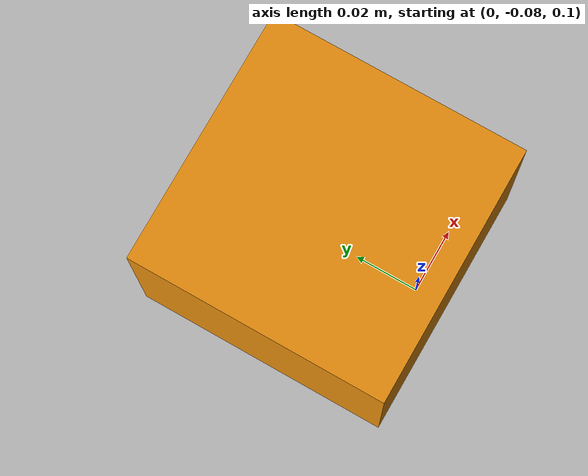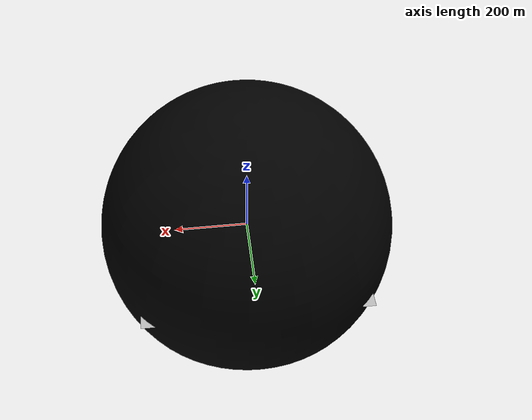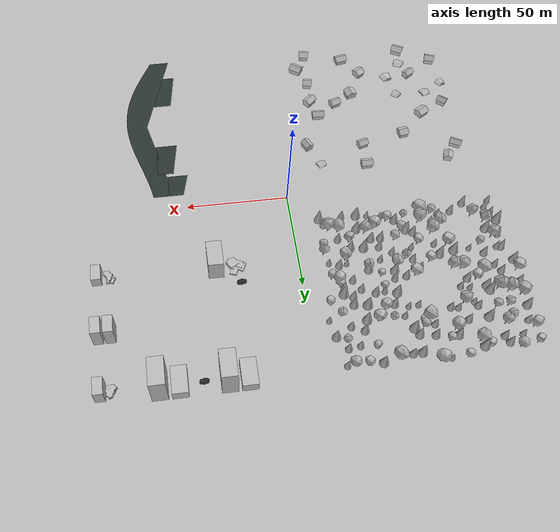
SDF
<sdf version="1.9">
 <world name="region">
  <physics name="1ms" type="ignore">
   <max_step_size>0.001</max_step_size>
   <real_time_factor>1.0</real_time_factor>
  </physics>
  <plugin filename="gz-sim-physics-system" name="gz::sim::systems::Physics"/>
  <plugin filename="gz-sim-sensors-system" name="gz::sim::systems::Sensors">
   <render_engine>ogre2</render_engine>
  </plugin>
  <plugin filename="gz-sim-user-commands-system" name="gz::sim::systems::UserCommands"/>
  <plugin filename="gz-sim-scene-broadcaster-system" name="gz::sim::systems::SceneBroadcaster"/>
  <plugin filename="gz-sim-air-pressure-system" name="gz::sim::systems::AirPressure"/>
  <plugin filename="gz-sim-air-speed-system" name="gz::sim::systems::AirSpeed"/>
  <plugin filename="gz-sim-altimeter-system" name="gz::sim::systems::Altimeter"/>
  <plugin filename="gz-sim-imu-system" name="gz::sim::systems::Imu"/>
  <plugin filename="gz-sim-magnetometer-system" name="gz::sim::systems::Magnetometer"/>
  <plugin filename="gz-sim-navsat-system" name="gz::sim::systems::NavSat"/>
  <plugin filename="gz-sim-particle-emitter-system" name="gz::sim::systems::ParticleEmitter"/>
  <scene><ambient>0.15 0.15 0.15</ambient><background>0.62 0.58 0.52</background></scene>
  <light type="directional" name="fill">
   <cast_shadows>false</cast_shadows>
   <pose>0 0 10 0 0 0</pose>
   <diffuse>0.4 0.4 0.4 1</diffuse>
   <specular>0 0 0 1</specular>
   <direction>0 0 -1</direction>
  </light>
  <atmosphere type="adiabatic">
   <temperature>288</temperature>
   <temperature_gradient>-0.0003</temperature_gradient>
  </atmosphere>
  <light type="directional" name="sun">
   <pose>0 0 10 0 0 0</pose>
   <diffuse>0.7 0.7 0.7 1</diffuse>
   <specular>0.8 0.8 0.8 1</specular>
   <attenuation>
    <range>1000</range>
    <constant>0.9</constant>
    <linear>0.01</linear>
    <quadratic>0.001</quadratic>
   </attenuation>
   <direction>-0.5 0.1 -0.9</direction>
  </light>
  <include><name>sky_day</name><uri>model://sky_dome</uri></include>
  <include><name>sky_night</name><uri>model://sky_dome_night</uri><pose>0 0 -100000 0 0 0</pose></include>
  <spherical_coordinates>
   <latitude_deg>-35.3632621</latitude_deg>
   <longitude_deg>149.1652374</longitude_deg>
   <elevation>10.0</elevation>
   <heading_deg>0</heading_deg>
   <surface_model>EARTH_WGS84</surface_model>
  </spherical_coordinates>
  <include><uri>model://region_scenery</uri></include>
  <model name="fire_city">
   <static>true</static>
   <pose>50 92 0 0 0 0.3</pose>
   <link name="link">
    <visual name="ash">
     <geometry>
      <mesh><uri>model://disaster_ground/meshes/rubble_mound_3.dae</uri><scale>2.0 1.8 0.8</scale></mesh>
     </geometry>
     <material>
      <ambient>0.1 0.1 0.1 1</ambient>
      <diffuse>0.13 0.12 0.12 1</diffuse>
      <specular>0 0 0 1</specular>
     </material>
     <plugin filename="gz-sim-thermal-system" name="gz::sim::systems::Thermal">
      <temperature>305.0</temperature>
     </plugin>
    </visual>
    <visual name="beam_1">
     <pose>0 0 0.3 0 0.08 0</pose>
     <geometry><box><size>2.6 0.3 0.3</size></box></geometry>
     <material><ambient>0.03 0.025 0.02 1</ambient><diffuse>0.05 0.04 0.035 1</diffuse></material>
     <plugin filename="gz-sim-thermal-system" name="gz::sim::systems::Thermal">
      <temperature>335.0</temperature>
     </plugin>
    </visual>
    <visual name="ember_1">
     <pose>0.3 0.1 0.35 0 0 0.4</pose>
     <geometry><box><size>0.5 0.25 0.1</size></box></geometry>
     <material>
      <ambient>1 0.3 0.05 1</ambient>
      <diffuse>1 0.3 0.05 1</diffuse>
      <emissive>1 0.35 0.05 1</emissive>
     </material>
     <plugin filename="gz-sim-thermal-system" name="gz::sim::systems::Thermal">
      <temperature>365.0</temperature>
     </plugin>
    </visual>
   </link>
  </model>
  <include><name>smoke_fire_city</name><uri>model://smoke_plume</uri><pose>50 92 3 0 0 0</pose></include>
  <model name="fire_debris">
   <static>true</static>
   <pose>28 45 0 0 0 0.3</pose>
   <link name="link">
    <visual name="ash">
     <geometry>
      <mesh><uri>model://disaster_ground/meshes/rubble_mound_3.dae</uri><scale>2.0 1.8 0.8</scale></mesh>
     </geometry>
     <material>
      <ambient>0.1 0.1 0.1 1</ambient>
      <diffuse>0.13 0.12 0.12 1</diffuse>
      <specular>0 0 0 1</specular>
     </material>
     <plugin filename="gz-sim-thermal-system" name="gz::sim::systems::Thermal">
      <temperature>305.0</temperature>
     </plugin>
    </visual>
    <visual name="beam_1">
     <pose>0 0 0.3 0 0.08 0</pose>
     <geometry><box><size>2.6 0.3 0.3</size></box></geometry>
     <material><ambient>0.03 0.025 0.02 1</ambient><diffuse>0.05 0.04 0.035 1</diffuse></material>
     <plugin filename="gz-sim-thermal-system" name="gz::sim::systems::Thermal">
      <temperature>335.0</temperature>
     </plugin>
    </visual>
    <visual name="ember_1">
     <pose>0.3 0.1 0.35 0 0 0.4</pose>
     <geometry><box><size>0.5 0.25 0.1</size></box></geometry>
     <material>
      <ambient>1 0.3 0.05 1</ambient>
      <diffuse>1 0.3 0.05 1</diffuse>
      <emissive>1 0.35 0.05 1</emissive>
     </material>
     <plugin filename="gz-sim-thermal-system" name="gz::sim::systems::Thermal">
      <temperature>365.0</temperature>
     </plugin>
    </visual>
   </link>
  </model>
  <model name="casualty_c1_heat">
   <static>true</static>
   <pose>-18.76 -56.71 0.27 0 0 3.672</pose>
   <link name="body">
    <visual name="head">
     <pose>-0.55 0 0 0 0 0</pose>
     <geometry><sphere><radius>0.123</radius></sphere></geometry>
     <transparency>1.0</transparency>
     <cast_shadows>false</cast_shadows>
     <plugin filename="gz-sim-thermal-system" name="gz::sim::systems::Thermal">
      <temperature>309</temperature>
     </plugin>
    </visual>
    <visual name="torso">
     <pose>-0.15 0 0 0 0 0</pose>
     <geometry><box><size>0.515 0.381 0.2</size></box></geometry>
     <transparency>1.0</transparency>
     <cast_shadows>false</cast_shadows>
     <plugin filename="gz-sim-thermal-system" name="gz::sim::systems::Thermal">
      <temperature>305</temperature>
     </plugin>
    </visual>
    <visual name="pelvis">
     <pose>0.12 0 0 0 0 0</pose>
     <geometry><box><size>0.2 0.336 0.18</size></box></geometry>
     <transparency>1.0</transparency>
     <cast_shadows>false</cast_shadows>
     <plugin filename="gz-sim-thermal-system" name="gz::sim::systems::Thermal">
      <temperature>305</temperature>
     </plugin>
    </visual>
    <visual name="leg_l">
     <pose>0.6 0.13 0 0 1.5708 0.12</pose>
     <geometry><cylinder><radius>0.078</radius><length>0.9</length></cylinder></geometry>
     <transparency>1.0</transparency>
     <cast_shadows>false</cast_shadows>
     <plugin filename="gz-sim-thermal-system" name="gz::sim::systems::Thermal">
      <temperature>305</temperature>
     </plugin>
    </visual>
    <visual name="leg_r">
     <pose>0.6 -0.13 0 0 1.5708 -0.12</pose>
     <geometry><cylinder><radius>0.078</radius><length>0.9</length></cylinder></geometry>
     <transparency>1.0</transparency>
     <cast_shadows>false</cast_shadows>
     <plugin filename="gz-sim-thermal-system" name="gz::sim::systems::Thermal">
      <temperature>305</temperature>
     </plugin>
    </visual>
    <visual name="arm_l">
     <pose>-0.02 0.24 0 0 1.5708 0</pose>
     <geometry><cylinder><radius>0.050</radius><length>0.66</length></cylinder></geometry>
     <transparency>1.0</transparency>
     <cast_shadows>false</cast_shadows>
     <plugin filename="gz-sim-thermal-system" name="gz::sim::systems::Thermal">
      <temperature>305</temperature>
     </plugin>
    </visual>
    <visual name="arm_r">
     <pose>-0.02 -0.24 0 0 1.5708 0</pose>
     <geometry><cylinder><radius>0.050</radius><length>0.66</length></cylinder></geometry>
     <transparency>1.0</transparency>
     <cast_shadows>false</cast_shadows>
     <plugin filename="gz-sim-thermal-system" name="gz::sim::systems::Thermal">
      <temperature>305</temperature>
     </plugin>
    </visual>
    <visual name="hand_l">
     <pose>0.34 0.25 0 0 0 0</pose>
     <geometry><sphere><radius>0.055</radius></sphere></geometry>
     <transparency>1.0</transparency>
     <cast_shadows>false</cast_shadows>
     <plugin filename="gz-sim-thermal-system" name="gz::sim::systems::Thermal">
      <temperature>309</temperature>
     </plugin>
    </visual>
    <visual name="hand_r">
     <pose>0.34 -0.25 0 0 0 0</pose>
     <geometry><sphere><radius>0.055</radius></sphere></geometry>
     <transparency>1.0</transparency>
     <cast_shadows>false</cast_shadows>
     <plugin filename="gz-sim-thermal-system" name="gz::sim::systems::Thermal">
      <temperature>309</temperature>
     </plugin>
    </visual>
   </link>
  </model>
  <model name="casualty_c2_heat">
   <static>true</static>
   <pose>60.57 79.05 0.0 0 0 2.240</pose>
   <link name="body">
    <visual name="head">
     <pose>0 0 1.62 0 0 0</pose>
     <geometry><sphere><radius>0.11</radius></sphere></geometry>
     <transparency>1.0</transparency>
     <cast_shadows>false</cast_shadows>
     <plugin filename="gz-sim-thermal-system" name="gz::sim::systems::Thermal">
      <temperature>309</temperature>
     </plugin>
    </visual>
    <visual name="torso">
     <pose>0 0 1.2 0 0 0</pose>
     <geometry><box><size>0.24 0.4 0.6</size></box></geometry>
     <transparency>1.0</transparency>
     <cast_shadows>false</cast_shadows>
     <plugin filename="gz-sim-thermal-system" name="gz::sim::systems::Thermal">
      <temperature>305</temperature>
     </plugin>
    </visual>
    <visual name="hips">
     <pose>0 0 0.85 0 0 0</pose>
     <geometry><box><size>0.22 0.34 0.2</size></box></geometry>
     <transparency>1.0</transparency>
     <cast_shadows>false</cast_shadows>
     <plugin filename="gz-sim-thermal-system" name="gz::sim::systems::Thermal">
      <temperature>305</temperature>
     </plugin>
    </visual>
    <visual name="leg_l">
     <pose>0 0.1 0.42 0 0 0</pose>
     <geometry><cylinder><radius>0.07</radius><length>0.84</length></cylinder></geometry>
     <transparency>1.0</transparency>
     <cast_shadows>false</cast_shadows>
     <plugin filename="gz-sim-thermal-system" name="gz::sim::systems::Thermal">
      <temperature>305</temperature>
     </plugin>
    </visual>
    <visual name="leg_r">
     <pose>0 -0.1 0.42 0 0 0</pose>
     <geometry><cylinder><radius>0.07</radius><length>0.84</length></cylinder></geometry>
     <transparency>1.0</transparency>
     <cast_shadows>false</cast_shadows>
     <plugin filename="gz-sim-thermal-system" name="gz::sim::systems::Thermal">
      <temperature>305</temperature>
     </plugin>
    </visual>
    <visual name="arm_l">
     <pose>0 0.26 1.15 0 0 0</pose>
     <geometry><cylinder><radius>0.045</radius><length>0.6</length></cylinder></geometry>
     <transparency>1.0</transparency>
     <cast_shadows>false</cast_shadows>
     <plugin filename="gz-sim-thermal-system" name="gz::sim::systems::Thermal">
      <temperature>305</temperature>
     </plugin>
    </visual>
    <visual name="arm_r">
     <pose>0 -0.26 1.15 0 0 0</pose>
     <geometry><cylinder><radius>0.045</radius><length>0.6</length></cylinder></geometry>
     <transparency>1.0</transparency>
     <cast_shadows>false</cast_shadows>
     <plugin filename="gz-sim-thermal-system" name="gz::sim::systems::Thermal">
      <temperature>305</temperature>
     </plugin>
    </visual>
   </link>
  </model>
  <model name="casualty_c3_heat">
   <static>true</static>
   <pose>-87.86 -90.43 0.0 0 0 2.270</pose>
   <link name="body">
    <visual name="head">
     <pose>-0.05 0 0.88 0 0 0</pose>
     <geometry><sphere><radius>0.11</radius></sphere></geometry>
     <transparency>1.0</transparency>
     <cast_shadows>false</cast_shadows>
     <plugin filename="gz-sim-thermal-system" name="gz::sim::systems::Thermal">
      <temperature>309</temperature>
     </plugin>
    </visual>
    <visual name="torso">
     <pose>-0.05 0 0.55 0 0 0</pose>
     <geometry><box><size>0.24 0.4 0.55</size></box></geometry>
     <transparency>1.0</transparency>
     <cast_shadows>false</cast_shadows>
     <plugin filename="gz-sim-thermal-system" name="gz::sim::systems::Thermal">
      <temperature>305</temperature>
     </plugin>
    </visual>
    <visual name="thigh_l">
     <pose>0.22 0.1 0.12 0 1.5708 0</pose>
     <geometry><cylinder><radius>0.08</radius><length>0.45</length></cylinder></geometry>
     <transparency>1.0</transparency>
     <cast_shadows>false</cast_shadows>
     <plugin filename="gz-sim-thermal-system" name="gz::sim::systems::Thermal">
      <temperature>305</temperature>
     </plugin>
    </visual>
    <visual name="thigh_r">
     <pose>0.22 -0.1 0.12 0 1.5708 0</pose>
     <geometry><cylinder><radius>0.08</radius><length>0.45</length></cylinder></geometry>
     <transparency>1.0</transparency>
     <cast_shadows>false</cast_shadows>
     <plugin filename="gz-sim-thermal-system" name="gz::sim::systems::Thermal">
      <temperature>305</temperature>
     </plugin>
    </visual>
    <visual name="shin_l">
     <pose>0.45 0.1 0.12 0 1.5708 0</pose>
     <geometry><cylinder><radius>0.06</radius><length>0.4</length></cylinder></geometry>
     <transparency>1.0</transparency>
     <cast_shadows>false</cast_shadows>
     <plugin filename="gz-sim-thermal-system" name="gz::sim::systems::Thermal">
      <temperature>305</temperature>
     </plugin>
    </visual>
    <visual name="shin_r">
     <pose>0.45 -0.1 0.12 0 1.5708 0</pose>
     <geometry><cylinder><radius>0.06</radius><length>0.4</length></cylinder></geometry>
     <transparency>1.0</transparency>
     <cast_shadows>false</cast_shadows>
     <plugin filename="gz-sim-thermal-system" name="gz::sim::systems::Thermal">
      <temperature>305</temperature>
     </plugin>
    </visual>
    <visual name="arm_l">
     <pose>0.05 0.26 0.5 0 0.4 0</pose>
     <geometry><cylinder><radius>0.045</radius><length>0.5</length></cylinder></geometry>
     <transparency>1.0</transparency>
     <cast_shadows>false</cast_shadows>
     <plugin filename="gz-sim-thermal-system" name="gz::sim::systems::Thermal">
      <temperature>305</temperature>
     </plugin>
    </visual>
    <visual name="arm_r">
     <pose>0.05 -0.26 0.5 0 0.4 0</pose>
     <geometry><cylinder><radius>0.045</radius><length>0.5</length></cylinder></geometry>
     <transparency>1.0</transparency>
     <cast_shadows>false</cast_shadows>
     <plugin filename="gz-sim-thermal-system" name="gz::sim::systems::Thermal">
      <temperature>305</temperature>
     </plugin>
    </visual>
   </link>
  </model>
  <model name="casualty_c4_heat">
   <static>true</static>
   <pose>-90.37 -64.78 0.0 0 0 1.340</pose>
   <link name="body">
    <visual name="head">
     <pose>-0.05 0 0.88 0 0 0</pose>
     <geometry><sphere><radius>0.11</radius></sphere></geometry>
     <transparency>1.0</transparency>
     <cast_shadows>false</cast_shadows>
     <plugin filename="gz-sim-thermal-system" name="gz::sim::systems::Thermal">
      <temperature>309</temperature>
     </plugin>
    </visual>
    <visual name="torso">
     <pose>-0.05 0 0.55 0 0 0</pose>
     <geometry><box><size>0.24 0.4 0.55</size></box></geometry>
     <transparency>1.0</transparency>
     <cast_shadows>false</cast_shadows>
     <plugin filename="gz-sim-thermal-system" name="gz::sim::systems::Thermal">
      <temperature>305</temperature>
     </plugin>
    </visual>
    <visual name="thigh_l">
     <pose>0.22 0.1 0.12 0 1.5708 0</pose>
     <geometry><cylinder><radius>0.08</radius><length>0.45</length></cylinder></geometry>
     <transparency>1.0</transparency>
     <cast_shadows>false</cast_shadows>
     <plugin filename="gz-sim-thermal-system" name="gz::sim::systems::Thermal">
      <temperature>305</temperature>
     </plugin>
    </visual>
    <visual name="thigh_r">
     <pose>0.22 -0.1 0.12 0 1.5708 0</pose>
     <geometry><cylinder><radius>0.08</radius><length>0.45</length></cylinder></geometry>
     <transparency>1.0</transparency>
     <cast_shadows>false</cast_shadows>
     <plugin filename="gz-sim-thermal-system" name="gz::sim::systems::Thermal">
      <temperature>305</temperature>
     </plugin>
    </visual>
    <visual name="shin_l">
     <pose>0.45 0.1 0.12 0 1.5708 0</pose>
     <geometry><cylinder><radius>0.06</radius><length>0.4</length></cylinder></geometry>
     <transparency>1.0</transparency>
     <cast_shadows>false</cast_shadows>
     <plugin filename="gz-sim-thermal-system" name="gz::sim::systems::Thermal">
      <temperature>305</temperature>
     </plugin>
    </visual>
    <visual name="shin_r">
     <pose>0.45 -0.1 0.12 0 1.5708 0</pose>
     <geometry><cylinder><radius>0.06</radius><length>0.4</length></cylinder></geometry>
     <transparency>1.0</transparency>
     <cast_shadows>false</cast_shadows>
     <plugin filename="gz-sim-thermal-system" name="gz::sim::systems::Thermal">
      <temperature>305</temperature>
     </plugin>
    </visual>
    <visual name="arm_l">
     <pose>0.05 0.26 0.5 0 0.4 0</pose>
     <geometry><cylinder><radius>0.045</radius><length>0.5</length></cylinder></geometry>
     <transparency>1.0</transparency>
     <cast_shadows>false</cast_shadows>
     <plugin filename="gz-sim-thermal-system" name="gz::sim::systems::Thermal">
      <temperature>305</temperature>
     </plugin>
    </visual>
    <visual name="arm_r">
     <pose>0.05 -0.26 0.5 0 0.4 0</pose>
     <geometry><cylinder><radius>0.045</radius><length>0.5</length></cylinder></geometry>
     <transparency>1.0</transparency>
     <cast_shadows>false</cast_shadows>
     <plugin filename="gz-sim-thermal-system" name="gz::sim::systems::Thermal">
      <temperature>305</temperature>
     </plugin>
    </visual>
   </link>
  </model>
  <model name="casualty_c5_heat">
   <static>true</static>
   <pose>83.91 91.10 0.27 0 0 3.032</pose>
   <link name="body">
    <visual name="head">
     <pose>-0.55 0 0 0 0 0</pose>
     <geometry><sphere><radius>0.123</radius></sphere></geometry>
     <transparency>1.0</transparency>
     <cast_shadows>false</cast_shadows>
     <plugin filename="gz-sim-thermal-system" name="gz::sim::systems::Thermal">
      <temperature>309</temperature>
     </plugin>
    </visual>
    <visual name="torso">
     <pose>-0.15 0 0 0 0 0</pose>
     <geometry><box><size>0.515 0.381 0.2</size></box></geometry>
     <transparency>1.0</transparency>
     <cast_shadows>false</cast_shadows>
     <plugin filename="gz-sim-thermal-system" name="gz::sim::systems::Thermal">
      <temperature>305</temperature>
     </plugin>
    </visual>
    <visual name="pelvis">
     <pose>0.12 0 0 0 0 0</pose>
     <geometry><box><size>0.2 0.336 0.18</size></box></geometry>
     <transparency>1.0</transparency>
     <cast_shadows>false</cast_shadows>
     <plugin filename="gz-sim-thermal-system" name="gz::sim::systems::Thermal">
      <temperature>305</temperature>
     </plugin>
    </visual>
    <visual name="leg_l">
     <pose>0.6 0.13 0 0 1.5708 0.12</pose>
     <geometry><cylinder><radius>0.078</radius><length>0.9</length></cylinder></geometry>
     <transparency>1.0</transparency>
     <cast_shadows>false</cast_shadows>
     <plugin filename="gz-sim-thermal-system" name="gz::sim::systems::Thermal">
      <temperature>305</temperature>
     </plugin>
    </visual>
    <visual name="leg_r">
     <pose>0.6 -0.13 0 0 1.5708 -0.12</pose>
     <geometry><cylinder><radius>0.078</radius><length>0.9</length></cylinder></geometry>
     <transparency>1.0</transparency>
     <cast_shadows>false</cast_shadows>
     <plugin filename="gz-sim-thermal-system" name="gz::sim::systems::Thermal">
      <temperature>305</temperature>
     </plugin>
    </visual>
    <visual name="arm_l">
     <pose>-0.02 0.24 0 0 1.5708 0</pose>
     <geometry><cylinder><radius>0.050</radius><length>0.66</length></cylinder></geometry>
     <transparency>1.0</transparency>
     <cast_shadows>false</cast_shadows>
     <plugin filename="gz-sim-thermal-system" name="gz::sim::systems::Thermal">
      <temperature>305</temperature>
     </plugin>
    </visual>
    <visual name="arm_r">
     <pose>-0.02 -0.24 0 0 1.5708 0</pose>
     <geometry><cylinder><radius>0.050</radius><length>0.66</length></cylinder></geometry>
     <transparency>1.0</transparency>
     <cast_shadows>false</cast_shadows>
     <plugin filename="gz-sim-thermal-system" name="gz::sim::systems::Thermal">
      <temperature>305</temperature>
     </plugin>
    </visual>
    <visual name="hand_l">
     <pose>0.34 0.25 0 0 0 0</pose>
     <geometry><sphere><radius>0.055</radius></sphere></geometry>
     <transparency>1.0</transparency>
     <cast_shadows>false</cast_shadows>
     <plugin filename="gz-sim-thermal-system" name="gz::sim::systems::Thermal">
      <temperature>309</temperature>
     </plugin>
    </visual>
    <visual name="hand_r">
     <pose>0.34 -0.25 0 0 0 0</pose>
     <geometry><sphere><radius>0.055</radius></sphere></geometry>
     <transparency>1.0</transparency>
     <cast_shadows>false</cast_shadows>
     <plugin filename="gz-sim-thermal-system" name="gz::sim::systems::Thermal">
      <temperature>309</temperature>
     </plugin>
    </visual>
   </link>
  </model>
  <model name="casualty_c6_heat">
   <static>true</static>
   <pose>-61.42 56.82 0.27 0 0 1.890</pose>
   <link name="body">
    <visual name="head">
     <pose>-0.55 0 0 0 0 0</pose>
     <geometry><sphere><radius>0.123</radius></sphere></geometry>
     <transparency>1.0</transparency>
     <cast_shadows>false</cast_shadows>
     <plugin filename="gz-sim-thermal-system" name="gz::sim::systems::Thermal">
      <temperature>309</temperature>
     </plugin>
    </visual>
    <visual name="torso">
     <pose>-0.15 0 0 0 0 0</pose>
     <geometry><box><size>0.515 0.381 0.2</size></box></geometry>
     <transparency>1.0</transparency>
     <cast_shadows>false</cast_shadows>
     <plugin filename="gz-sim-thermal-system" name="gz::sim::systems::Thermal">
      <temperature>305</temperature>
     </plugin>
    </visual>
    <visual name="pelvis">
     <pose>0.12 0 0 0 0 0</pose>
     <geometry><box><size>0.2 0.336 0.18</size></box></geometry>
     <transparency>1.0</transparency>
     <cast_shadows>false</cast_shadows>
     <plugin filename="gz-sim-thermal-system" name="gz::sim::systems::Thermal">
      <temperature>305</temperature>
     </plugin>
    </visual>
    <visual name="leg_l">
     <pose>0.6 0.13 0 0 1.5708 0.12</pose>
     <geometry><cylinder><radius>0.078</radius><length>0.9</length></cylinder></geometry>
     <transparency>1.0</transparency>
     <cast_shadows>false</cast_shadows>
     <plugin filename="gz-sim-thermal-system" name="gz::sim::systems::Thermal">
      <temperature>305</temperature>
     </plugin>
    </visual>
    <visual name="leg_r">
     <pose>0.6 -0.13 0 0 1.5708 -0.12</pose>
     <geometry><cylinder><radius>0.078</radius><length>0.9</length></cylinder></geometry>
     <transparency>1.0</transparency>
     <cast_shadows>false</cast_shadows>
     <plugin filename="gz-sim-thermal-system" name="gz::sim::systems::Thermal">
      <temperature>305</temperature>
     </plugin>
    </visual>
    <visual name="arm_l">
     <pose>-0.02 0.24 0 0 1.5708 0</pose>
     <geometry><cylinder><radius>0.050</radius><length>0.66</length></cylinder></geometry>
     <transparency>1.0</transparency>
     <cast_shadows>false</cast_shadows>
     <plugin filename="gz-sim-thermal-system" name="gz::sim::systems::Thermal">
      <temperature>305</temperature>
     </plugin>
    </visual>
    <visual name="arm_r">
     <pose>-0.02 -0.24 0 0 1.5708 0</pose>
     <geometry><cylinder><radius>0.050</radius><length>0.66</length></cylinder></geometry>
     <transparency>1.0</transparency>
     <cast_shadows>false</cast_shadows>
     <plugin filename="gz-sim-thermal-system" name="gz::sim::systems::Thermal">
      <temperature>305</temperature>
     </plugin>
    </visual>
    <visual name="hand_l">
     <pose>0.34 0.25 0 0 0 0</pose>
     <geometry><sphere><radius>0.055</radius></sphere></geometry>
     <transparency>1.0</transparency>
     <cast_shadows>false</cast_shadows>
     <plugin filename="gz-sim-thermal-system" name="gz::sim::systems::Thermal">
      <temperature>309</temperature>
     </plugin>
    </visual>
    <visual name="hand_r">
     <pose>0.34 -0.25 0 0 0 0</pose>
     <geometry><sphere><radius>0.055</radius></sphere></geometry>
     <transparency>1.0</transparency>
     <cast_shadows>false</cast_shadows>
     <plugin filename="gz-sim-thermal-system" name="gz::sim::systems::Thermal">
      <temperature>309</temperature>
     </plugin>
    </visual>
   </link>
  </model>
  <model name="payload_box">
   <pose>0 -0.05 0.12 0 0 0</pose>
   <link name="body">
    <inertial>
     <mass>0.3</mass>
     <inertia><ixx>0.0003</ixx><ixy>0</ixy><ixz>0</ixz><iyy>0.0003</iyy><iyz>0</iyz><izz>0.0003</izz></inertia>
    </inertial>
    <visual name="visual">
     <geometry><box><size>0.08 0.08 0.06</size></box></geometry>
     <material>
      <ambient>0.9 0.55 0.05 1</ambient>
      <diffuse>0.9 0.55 0.05 1</diffuse>
      <specular>0.3 0.3 0.3 1</specular>
     </material>
    </visual>
    <collision name="collision"><geometry><box><size>0.08 0.08 0.06</size></box></geometry></collision>
   </link>
  </model>
 </world>
</sdf>

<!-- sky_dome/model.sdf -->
<sdf version="1.9">
  <model name="sky_dome">
    <static>true</static>
    <link name="link">
      <visual name="visual">
        <cast_shadows>false</cast_shadows>
        <geometry><mesh><uri>model://sky_dome/meshes/dome.dae</uri><scale>400 400 400</scale></mesh></geometry>
        <material>
          <ambient>0 0 0 1</ambient>
          <diffuse>0 0 0 1</diffuse>
          <specular>0 0 0 1</specular>
          <emissive>1 1 1 1</emissive>
          <pbr>
            <metal>
              <albedo_map>model://sky_dome/materials/textures/sky_day.jpg</albedo_map>
              <emissive_map>model://sky_dome/materials/textures/sky_day.jpg</emissive_map>
              <roughness>1</roughness>
              <metalness>0</metalness>
            </metal>
          </pbr>
        </material>
        <!-- Clear sky is cold to a thermal camera. -->
        <plugin filename="gz-sim-thermal-system" name="gz::sim::systems::Thermal">
          <temperature>240.0</temperature>
        </plugin>
      </visual>
    </link>
  </model>
</sdf>

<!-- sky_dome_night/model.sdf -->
<sdf version="1.9">
  <model name="sky_dome_night">
    <static>true</static>
    <link name="link">
      <visual name="visual">
        <cast_shadows>false</cast_shadows>
        <geometry><mesh><uri>model://sky_dome/meshes/dome.dae</uri><scale>400 400 400</scale></mesh></geometry>
        <material>
          <ambient>0 0 0 1</ambient>
          <diffuse>0 0 0 1</diffuse>
          <specular>0 0 0 1</specular>
          <emissive>1 1 1 1</emissive>
          <pbr>
            <metal>
              <albedo_map>model://sky_dome/materials/textures/sky_night.jpg</albedo_map>
              <emissive_map>model://sky_dome/materials/textures/sky_night.jpg</emissive_map>
              <roughness>1</roughness>
              <metalness>0</metalness>
            </metal>
          </pbr>
        </material>
        <!-- Clear sky is cold to a thermal camera. -->
        <plugin filename="gz-sim-thermal-system" name="gz::sim::systems::Thermal">
          <temperature>240.0</temperature>
        </plugin>
      </visual>
    </link>
  </model>
</sdf>

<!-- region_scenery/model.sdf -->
<sdf version="1.9">
  <model name="region_scenery">
    <static>true</static>
    <link name="link">
      <collision name="ground_collision">
        <geometry><plane><normal>0 0 1</normal><size>600 600</size></plane></geometry>
      </collision>
      <visual name="ground">
        <geometry><mesh><uri>model://region_scenery/meshes/ground.obj</uri></mesh></geometry>
      </visual>
      <visual name="buildings">
        <geometry><mesh><uri>model://region_scenery/meshes/buildings.obj</uri></mesh></geometry>
      </visual>
      <visual name="trees">
        <geometry><mesh><uri>model://region_scenery/meshes/trees.obj</uri></mesh></geometry>
      </visual>
      <visual name="river_0">
        <geometry><mesh><uri>model://region_scenery/meshes/river_0.obj</uri></mesh></geometry>
        <material><ambient>0.10 0.13 0.13 1</ambient><diffuse>0.16 0.20 0.19 1</diffuse><specular>0.7 0.7 0.7 1</specular>
          <pbr><metal><roughness>0.08</roughness><metalness>0.0</metalness></metal></pbr></material>
        <cast_shadows>false</cast_shadows>
        <plugin filename="gz-sim-thermal-system" name="gz::sim::systems::Thermal"><temperature>281.0</temperature></plugin>
      </visual>
      <visual name="flood_1">
        <geometry><mesh><uri>model://region_scenery/meshes/flood_1.obj</uri></mesh></geometry>
        <material><ambient>0.10 0.13 0.13 1</ambient><diffuse>0.16 0.20 0.19 1</diffuse><specular>0.7 0.7 0.7 1</specular>
          <pbr><metal><roughness>0.08</roughness><metalness>0.0</metalness></metal></pbr></material>
        <cast_shadows>false</cast_shadows>
        <plugin filename="gz-sim-thermal-system" name="gz::sim::systems::Thermal"><temperature>279.0</temperature></plugin>
      </visual>
      <visual name="flood_2">
        <geometry><mesh><uri>model://region_scenery/meshes/flood_2.obj</uri></mesh></geometry>
        <material><ambient>0.10 0.13 0.13 1</ambient><diffuse>0.16 0.20 0.19 1</diffuse><specular>0.7 0.7 0.7 1</specular>
          <pbr><metal><roughness>0.08</roughness><metalness>0.0</metalness></metal></pbr></material>
        <cast_shadows>false</cast_shadows>
        <plugin filename="gz-sim-thermal-system" name="gz::sim::systems::Thermal"><temperature>279.0</temperature></plugin>
      </visual>
      <visual name="flood_3">
        <geometry><mesh><uri>model://region_scenery/meshes/flood_3.obj</uri></mesh></geometry>
        <material><ambient>0.10 0.13 0.13 1</ambient><diffuse>0.16 0.20 0.19 1</diffuse><specular>0.7 0.7 0.7 1</specular>
          <pbr><metal><roughness>0.08</roughness><metalness>0.0</metalness></metal></pbr></material>
        <cast_shadows>false</cast_shadows>
        <plugin filename="gz-sim-thermal-system" name="gz::sim::systems::Thermal"><temperature>279.0</temperature></plugin>
      </visual>
    </link>
  </model>
</sdf>

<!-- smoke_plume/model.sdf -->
<sdf version="1.9">
  <model name="smoke_plume">
    <static>true</static>
    <link name="link">
      <pose>0 0 0 0 -1.5708 0</pose>
      <particle_emitter name="emitter" type="box">
        <emitting>true</emitting>
        <size>0.5 3 3</size>
        <particle_size>2.5 2.5 2.5</particle_size>
        <lifetime>12</lifetime>
        <min_velocity>1.2</min_velocity>
        <max_velocity>2.2</max_velocity>
        <scale_rate>1.2</scale_rate>
        <rate>10</rate>
        <material>
          <diffuse>0.35 0.33 0.32</diffuse>
          <specular>0 0 0</specular>
          <pbr>
            <metal>
              <albedo_map>materials/textures/smoke.png</albedo_map>
            </metal>
          </pbr>
        </material>
      </particle_emitter>
    </link>
  </model>
</sdf>
